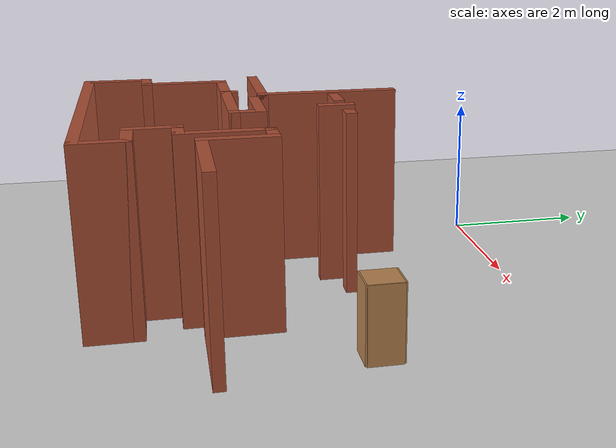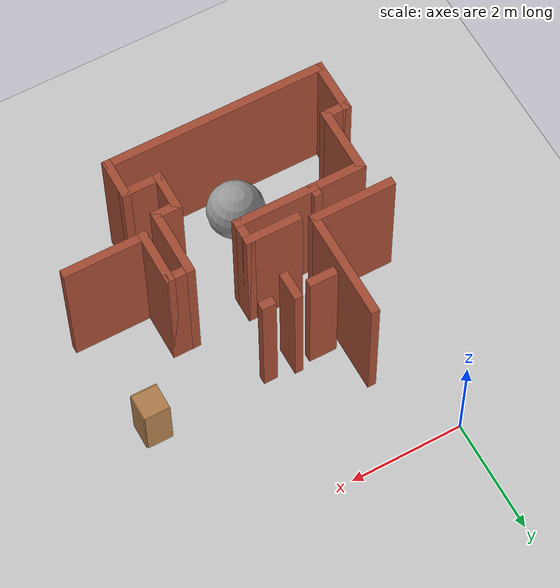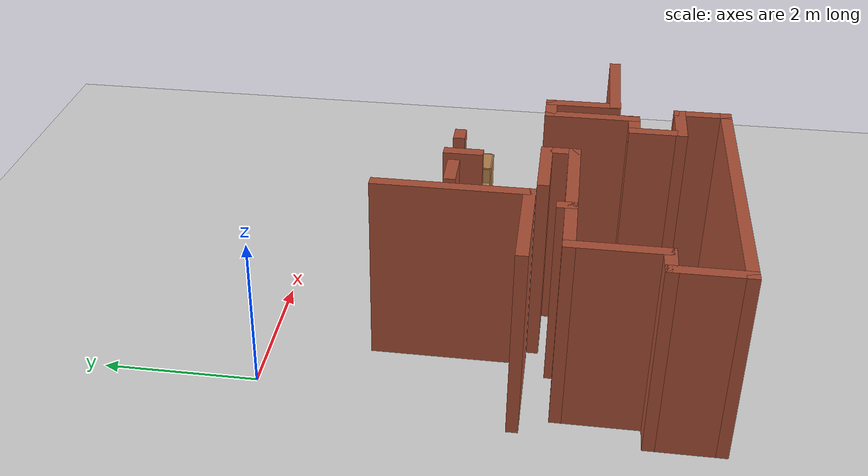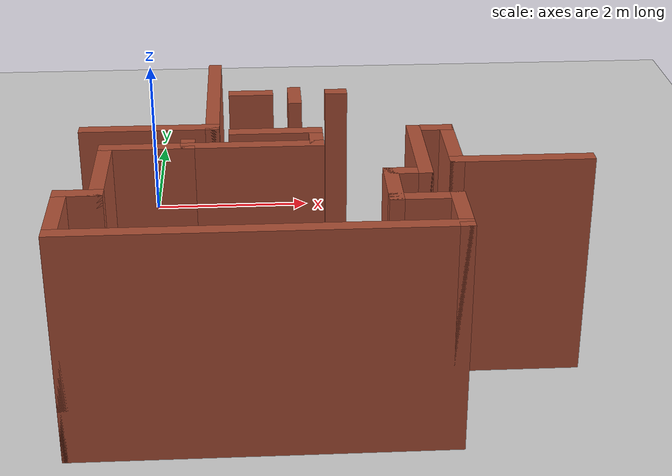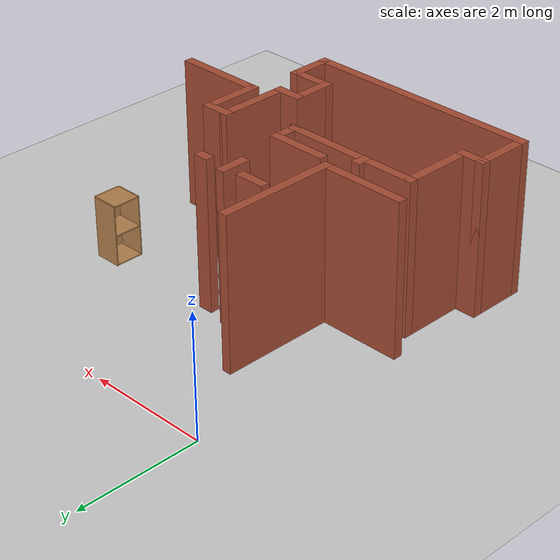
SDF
<sdf version="1.6">
 <world name="default">
  <model name="ground_plane">
   <static>1</static>
   <link name="link">
    <collision name="collision">
     <geometry><plane><normal>0 0 1</normal><size>100 100</size></plane></geometry>
     <surface><friction><ode><mu>100</mu><mu2>50</mu2></ode></friction></surface>
    </collision>
    <visual name="visual">
     <cast_shadows>0</cast_shadows>
     <geometry><plane><normal>0 0 1</normal><size>100 100</size></plane></geometry>
     <material>
      <script><uri>file://media/materials/scripts/gazebo.material</uri><name>Gazebo/Grey</name></script>
     </material>
    </visual>
   </link>
  </model>
  <model name="map_45">
   <link name="Wall_140">
    <pose>1.72787 -2.46306 0 0 -0 0</pose>
    <visual name="Wall_140_Visual">
     <pose>0 0 1.25 0 -0 0</pose>
     <geometry><box><size>0.5 0.15 2.5</size></box></geometry>
     <material>
      <script><uri>file://media/materials/scripts/gazebo.material</uri><name>Gazebo/Bricks</name></script>
      <ambient>1 1 1 1</ambient>
      <shader type="pixel"/>
     </material>
     <meta><layer>0</layer></meta>
    </visual>
    <collision name="Wall_140_Collision">
     <pose>0 0 1.25 0 -0 0</pose>
     <geometry><box><size>0.5 0.15 2.5</size></box></geometry>
     <surface>
      <friction>
       <ode><mu>1</mu><mu2>1</mu2><fdir1>0 0 0</fdir1><slip1>0</slip1><slip2>0</slip2></ode>
       <torsional>
        <coefficient>1</coefficient>
        <patch_radius>0</patch_radius>
        <surface_radius>0</surface_radius>
        <use_patch_radius>1</use_patch_radius>
        <ode><slip>0</slip></ode>
       </torsional>
      </friction>
      <bounce><restitution_coefficient>0</restitution_coefficient><threshold>1e+06</threshold></bounce>
      <contact>
       <collide_without_contact>0</collide_without_contact>
       <collide_without_contact_bitmask>1</collide_without_contact_bitmask>
       <collide_bitmask>1</collide_bitmask>
       <ode>
        <soft_cfm>0</soft_cfm>
        <soft_erp>0.2</soft_erp>
        <kp>1e+13</kp>
        <kd>1</kd>
        <max_vel>0.01</max_vel>
        <min_depth>0</min_depth>
       </ode>
       <bullet>
        <split_impulse>1</split_impulse>
        <split_impulse_penetration_threshold>-0.01</split_impulse_penetration_threshold>
        <soft_cfm>0</soft_cfm>
        <soft_erp>0.2</soft_erp>
        <kp>1e+13</kp>
        <kd>1</kd>
       </bullet>
      </contact>
     </surface>
    </collision>
   </link>
   <link name="Wall_142">
    <pose>2.69348 -2.46306 0 0 -0 0</pose>
    <visual name="Wall_142_Visual">
     <pose>0 0 1.25 0 -0 0</pose>
     <geometry><box><size>0.25 0.15 2.5</size></box></geometry>
     <material>
      <script><uri>file://media/materials/scripts/gazebo.material</uri><name>Gazebo/Bricks</name></script>
      <ambient>1 1 1 1</ambient>
      <shader type="pixel"/>
     </material>
     <meta><layer>0</layer></meta>
    </visual>
    <collision name="Wall_142_Collision">
     <pose>0 0 1.25 0 -0 0</pose>
     <geometry><box><size>0.25 0.15 2.5</size></box></geometry>
     <surface>
      <friction>
       <ode><mu>1</mu><mu2>1</mu2><fdir1>0 0 0</fdir1><slip1>0</slip1><slip2>0</slip2></ode>
       <torsional>
        <coefficient>1</coefficient>
        <patch_radius>0</patch_radius>
        <surface_radius>0</surface_radius>
        <use_patch_radius>1</use_patch_radius>
        <ode><slip>0</slip></ode>
       </torsional>
      </friction>
      <bounce><restitution_coefficient>0</restitution_coefficient><threshold>1e+06</threshold></bounce>
      <contact>
       <collide_without_contact>0</collide_without_contact>
       <collide_without_contact_bitmask>1</collide_without_contact_bitmask>
       <collide_bitmask>1</collide_bitmask>
       <ode>
        <soft_cfm>0</soft_cfm>
        <soft_erp>0.2</soft_erp>
        <kp>1e+13</kp>
        <kd>1</kd>
        <max_vel>0.01</max_vel>
        <min_depth>0</min_depth>
       </ode>
       <bullet>
        <split_impulse>1</split_impulse>
        <split_impulse_penetration_threshold>-0.01</split_impulse_penetration_threshold>
        <soft_cfm>0</soft_cfm>
        <soft_erp>0.2</soft_erp>
        <kp>1e+13</kp>
        <kd>1</kd>
       </bullet>
      </contact>
     </surface>
    </collision>
   </link>
   <link name="Wall_152">
    <pose>2.21787 -2.55826 0 0 0 -1.5708</pose>
    <visual name="Wall_152_Visual">
     <pose>0 0 1.25 0 -0 0</pose>
     <geometry><box><size>0.5 0.15 2.5</size></box></geometry>
     <material>
      <script><uri>file://media/materials/scripts/gazebo.material</uri><name>Gazebo/Bricks</name></script>
      <ambient>1 1 1 1</ambient>
      <shader type="pixel"/>
     </material>
     <meta><layer>0</layer></meta>
    </visual>
    <collision name="Wall_152_Collision">
     <pose>0 0 1.25 0 -0 0</pose>
     <geometry><box><size>0.5 0.15 2.5</size></box></geometry>
     <surface>
      <friction>
       <ode><mu>1</mu><mu2>1</mu2><fdir1>0 0 0</fdir1><slip1>0</slip1><slip2>0</slip2></ode>
       <torsional>
        <coefficient>1</coefficient>
        <patch_radius>0</patch_radius>
        <surface_radius>0</surface_radius>
        <use_patch_radius>1</use_patch_radius>
        <ode><slip>0</slip></ode>
       </torsional>
      </friction>
      <bounce><restitution_coefficient>0</restitution_coefficient><threshold>1e+06</threshold></bounce>
      <contact>
       <collide_without_contact>0</collide_without_contact>
       <collide_without_contact_bitmask>1</collide_without_contact_bitmask>
       <collide_bitmask>1</collide_bitmask>
       <ode>
        <soft_cfm>0</soft_cfm>
        <soft_erp>0.2</soft_erp>
        <kp>1e+13</kp>
        <kd>1</kd>
        <max_vel>0.01</max_vel>
        <min_depth>0</min_depth>
       </ode>
       <bullet>
        <split_impulse>1</split_impulse>
        <split_impulse_penetration_threshold>-0.01</split_impulse_penetration_threshold>
        <soft_cfm>0</soft_cfm>
        <soft_erp>0.2</soft_erp>
        <kp>1e+13</kp>
        <kd>1</kd>
       </bullet>
      </contact>
     </surface>
    </collision>
   </link>
   <link name="Wall_45">
    <pose>0.633834 -3.44269 0 0 -0 0</pose>
    <visual name="Wall_45_Visual">
     <pose>0 0 1.25 0 -0 0</pose>
     <geometry><box><size>1.5 0.15 2.5</size></box></geometry>
     <material>
      <script><uri>file://media/materials/scripts/gazebo.material</uri><name>Gazebo/Bricks</name></script>
      <ambient>1 1 1 1</ambient>
      <shader type="pixel"/>
     </material>
     <meta><layer>0</layer></meta>
    </visual>
    <collision name="Wall_45_Collision">
     <pose>0 0 1.25 0 -0 0</pose>
     <geometry><box><size>1.5 0.15 2.5</size></box></geometry>
     <surface>
      <friction>
       <ode><mu>1</mu><mu2>1</mu2><fdir1>0 0 0</fdir1><slip1>0</slip1><slip2>0</slip2></ode>
       <torsional>
        <coefficient>1</coefficient>
        <patch_radius>0</patch_radius>
        <surface_radius>0</surface_radius>
        <use_patch_radius>1</use_patch_radius>
        <ode><slip>0</slip></ode>
       </torsional>
      </friction>
      <bounce><restitution_coefficient>0</restitution_coefficient><threshold>1e+06</threshold></bounce>
      <contact>
       <collide_without_contact>0</collide_without_contact>
       <collide_without_contact_bitmask>1</collide_without_contact_bitmask>
       <collide_bitmask>1</collide_bitmask>
       <ode>
        <soft_cfm>0</soft_cfm>
        <soft_erp>0.2</soft_erp>
        <kp>1e+13</kp>
        <kd>1</kd>
        <max_vel>0.01</max_vel>
        <min_depth>0</min_depth>
       </ode>
       <bullet>
        <split_impulse>1</split_impulse>
        <split_impulse_penetration_threshold>-0.01</split_impulse_penetration_threshold>
        <soft_cfm>0</soft_cfm>
        <soft_erp>0.2</soft_erp>
        <kp>1e+13</kp>
        <kd>1</kd>
       </bullet>
      </contact>
     </surface>
    </collision>
   </link>
   <link name="Wall_46">
    <pose>1.30883 -2.51769 0 0 -0 1.5708</pose>
    <visual name="Wall_46_Visual">
     <pose>0 0 1.25 0 -0 0</pose>
     <geometry><box><size>2 0.15 2.5</size></box></geometry>
     <material>
      <script><uri>file://media/materials/scripts/gazebo.material</uri><name>Gazebo/Bricks</name></script>
      <ambient>1 1 1 1</ambient>
      <shader type="pixel"/>
     </material>
     <meta><layer>0</layer></meta>
    </visual>
    <collision name="Wall_46_Collision">
     <pose>0 0 1.25 0 -0 0</pose>
     <geometry><box><size>2 0.15 2.5</size></box></geometry>
     <surface>
      <friction>
       <ode><mu>1</mu><mu2>1</mu2><fdir1>0 0 0</fdir1><slip1>0</slip1><slip2>0</slip2></ode>
       <torsional>
        <coefficient>1</coefficient>
        <patch_radius>0</patch_radius>
        <surface_radius>0</surface_radius>
        <use_patch_radius>1</use_patch_radius>
        <ode><slip>0</slip></ode>
       </torsional>
      </friction>
      <bounce><restitution_coefficient>0</restitution_coefficient><threshold>1e+06</threshold></bounce>
      <contact>
       <collide_without_contact>0</collide_without_contact>
       <collide_without_contact_bitmask>1</collide_without_contact_bitmask>
       <collide_bitmask>1</collide_bitmask>
       <ode>
        <soft_cfm>0</soft_cfm>
        <soft_erp>0.2</soft_erp>
        <kp>1e+13</kp>
        <kd>1</kd>
        <max_vel>0.01</max_vel>
        <min_depth>0</min_depth>
       </ode>
       <bullet>
        <split_impulse>1</split_impulse>
        <split_impulse_penetration_threshold>-0.01</split_impulse_penetration_threshold>
        <soft_cfm>0</soft_cfm>
        <soft_erp>0.2</soft_erp>
        <kp>1e+13</kp>
        <kd>1</kd>
       </bullet>
      </contact>
     </surface>
    </collision>
   </link>
   <link name="Wall_51">
    <pose>1.98383 -3.59269 0 0 -0 0</pose>
    <visual name="Wall_51_Visual">
     <pose>0 0 1.25 0 -0 0</pose>
     <geometry><box><size>1 0.15 2.5</size></box></geometry>
     <material>
      <script><uri>file://media/materials/scripts/gazebo.material</uri><name>Gazebo/Bricks</name></script>
      <ambient>1 1 1 1</ambient>
      <shader type="pixel"/>
     </material>
     <meta><layer>0</layer></meta>
    </visual>
    <collision name="Wall_51_Collision">
     <pose>0 0 1.25 0 -0 0</pose>
     <geometry><box><size>1 0.15 2.5</size></box></geometry>
     <surface>
      <friction>
       <ode><mu>1</mu><mu2>1</mu2><fdir1>0 0 0</fdir1><slip1>0</slip1><slip2>0</slip2></ode>
       <torsional>
        <coefficient>1</coefficient>
        <patch_radius>0</patch_radius>
        <surface_radius>0</surface_radius>
        <use_patch_radius>1</use_patch_radius>
        <ode><slip>0</slip></ode>
       </torsional>
      </friction>
      <bounce><restitution_coefficient>0</restitution_coefficient><threshold>1e+06</threshold></bounce>
      <contact>
       <collide_without_contact>0</collide_without_contact>
       <collide_without_contact_bitmask>1</collide_without_contact_bitmask>
       <collide_bitmask>1</collide_bitmask>
       <ode>
        <soft_cfm>0</soft_cfm>
        <soft_erp>0.2</soft_erp>
        <kp>1e+13</kp>
        <kd>1</kd>
        <max_vel>0.01</max_vel>
        <min_depth>0</min_depth>
       </ode>
       <bullet>
        <split_impulse>1</split_impulse>
        <split_impulse_penetration_threshold>-0.01</split_impulse_penetration_threshold>
        <soft_cfm>0</soft_cfm>
        <soft_erp>0.2</soft_erp>
        <kp>1e+13</kp>
        <kd>1</kd>
       </bullet>
      </contact>
     </surface>
    </collision>
   </link>
   <link name="Wall_52">
    <pose>2.40883 -3.76769 0 0 0 -1.5708</pose>
    <visual name="Wall_52_Visual">
     <pose>0 0 1.25 0 -0 0</pose>
     <geometry><box><size>0.5 0.15 2.5</size></box></geometry>
     <material>
      <script><uri>file://media/materials/scripts/gazebo.material</uri><name>Gazebo/Bricks</name></script>
      <ambient>1 1 1 1</ambient>
      <shader type="pixel"/>
     </material>
     <meta><layer>0</layer></meta>
    </visual>
    <collision name="Wall_52_Collision">
     <pose>0 0 1.25 0 -0 0</pose>
     <geometry><box><size>0.5 0.15 2.5</size></box></geometry>
     <surface>
      <friction>
       <ode><mu>1</mu><mu2>1</mu2><fdir1>0 0 0</fdir1><slip1>0</slip1><slip2>0</slip2></ode>
       <torsional>
        <coefficient>1</coefficient>
        <patch_radius>0</patch_radius>
        <surface_radius>0</surface_radius>
        <use_patch_radius>1</use_patch_radius>
        <ode><slip>0</slip></ode>
       </torsional>
      </friction>
      <bounce><restitution_coefficient>0</restitution_coefficient><threshold>1e+06</threshold></bounce>
      <contact>
       <collide_without_contact>0</collide_without_contact>
       <collide_without_contact_bitmask>1</collide_without_contact_bitmask>
       <collide_bitmask>1</collide_bitmask>
       <ode>
        <soft_cfm>0</soft_cfm>
        <soft_erp>0.2</soft_erp>
        <kp>1e+13</kp>
        <kd>1</kd>
        <max_vel>0.01</max_vel>
        <min_depth>0</min_depth>
       </ode>
       <bullet>
        <split_impulse>1</split_impulse>
        <split_impulse_penetration_threshold>-0.01</split_impulse_penetration_threshold>
        <soft_cfm>0</soft_cfm>
        <soft_erp>0.2</soft_erp>
        <kp>1e+13</kp>
        <kd>1</kd>
       </bullet>
      </contact>
     </surface>
    </collision>
   </link>
   <link name="Wall_53">
    <pose>1.73383 -3.94269 0 0 -0 3.14159</pose>
    <visual name="Wall_53_Visual">
     <pose>0 0 1.25 0 -0 0</pose>
     <geometry><box><size>1.5 0.15 2.5</size></box></geometry>
     <material>
      <script><uri>file://media/materials/scripts/gazebo.material</uri><name>Gazebo/Bricks</name></script>
      <ambient>1 1 1 1</ambient>
      <shader type="pixel"/>
     </material>
     <meta><layer>0</layer></meta>
    </visual>
    <collision name="Wall_53_Collision">
     <pose>0 0 1.25 0 -0 0</pose>
     <geometry><box><size>1.5 0.15 2.5</size></box></geometry>
     <surface>
      <friction>
       <ode><mu>1</mu><mu2>1</mu2><fdir1>0 0 0</fdir1><slip1>0</slip1><slip2>0</slip2></ode>
       <torsional>
        <coefficient>1</coefficient>
        <patch_radius>0</patch_radius>
        <surface_radius>0</surface_radius>
        <use_patch_radius>1</use_patch_radius>
        <ode><slip>0</slip></ode>
       </torsional>
      </friction>
      <bounce><restitution_coefficient>0</restitution_coefficient><threshold>1e+06</threshold></bounce>
      <contact>
       <collide_without_contact>0</collide_without_contact>
       <collide_without_contact_bitmask>1</collide_without_contact_bitmask>
       <collide_bitmask>1</collide_bitmask>
       <ode>
        <soft_cfm>0</soft_cfm>
        <soft_erp>0.2</soft_erp>
        <kp>1e+13</kp>
        <kd>1</kd>
        <max_vel>0.01</max_vel>
        <min_depth>0</min_depth>
       </ode>
       <bullet>
        <split_impulse>1</split_impulse>
        <split_impulse_penetration_threshold>-0.01</split_impulse_penetration_threshold>
        <soft_cfm>0</soft_cfm>
        <soft_erp>0.2</soft_erp>
        <kp>1e+13</kp>
        <kd>1</kd>
       </bullet>
      </contact>
     </surface>
    </collision>
   </link>
   <link name="Wall_54">
    <pose>1.05883 -3.89269 0 0 -0 1.5708</pose>
    <visual name="Wall_54_Visual">
     <pose>0 0 1.25 0 -0 0</pose>
     <geometry><box><size>0.25 0.15 2.5</size></box></geometry>
     <material>
      <script><uri>file://media/materials/scripts/gazebo.material</uri><name>Gazebo/Bricks</name></script>
      <ambient>1 1 1 1</ambient>
      <shader type="pixel"/>
     </material>
     <meta><layer>0</layer></meta>
    </visual>
    <collision name="Wall_54_Collision">
     <pose>0 0 1.25 0 -0 0</pose>
     <geometry><box><size>0.25 0.15 2.5</size></box></geometry>
     <surface>
      <friction>
       <ode><mu>1</mu><mu2>1</mu2><fdir1>0 0 0</fdir1><slip1>0</slip1><slip2>0</slip2></ode>
       <torsional>
        <coefficient>1</coefficient>
        <patch_radius>0</patch_radius>
        <surface_radius>0</surface_radius>
        <use_patch_radius>1</use_patch_radius>
        <ode><slip>0</slip></ode>
       </torsional>
      </friction>
      <bounce><restitution_coefficient>0</restitution_coefficient><threshold>1e+06</threshold></bounce>
      <contact>
       <collide_without_contact>0</collide_without_contact>
       <collide_without_contact_bitmask>1</collide_without_contact_bitmask>
       <collide_bitmask>1</collide_bitmask>
       <ode>
        <soft_cfm>0</soft_cfm>
        <soft_erp>0.2</soft_erp>
        <kp>1e+13</kp>
        <kd>1</kd>
        <max_vel>0.01</max_vel>
        <min_depth>0</min_depth>
       </ode>
       <bullet>
        <split_impulse>1</split_impulse>
        <split_impulse_penetration_threshold>-0.01</split_impulse_penetration_threshold>
        <soft_cfm>0</soft_cfm>
        <soft_erp>0.2</soft_erp>
        <kp>1e+13</kp>
        <kd>1</kd>
       </bullet>
      </contact>
     </surface>
    </collision>
   </link>
   <link name="Wall_57">
    <pose>0.633834 -3.94269 0 0 -0 3.14159</pose>
    <visual name="Wall_57_Visual">
     <pose>0 0 1.25 0 -0 0</pose>
     <geometry><box><size>1 0.15 2.5</size></box></geometry>
     <material>
      <script><uri>file://media/materials/scripts/gazebo.material</uri><name>Gazebo/Bricks</name></script>
      <ambient>1 1 1 1</ambient>
      <shader type="pixel"/>
     </material>
     <meta><layer>0</layer></meta>
    </visual>
    <collision name="Wall_57_Collision">
     <pose>0 0 1.25 0 -0 0</pose>
     <geometry><box><size>1 0.15 2.5</size></box></geometry>
     <surface>
      <friction>
       <ode><mu>1</mu><mu2>1</mu2><fdir1>0 0 0</fdir1><slip1>0</slip1><slip2>0</slip2></ode>
       <torsional>
        <coefficient>1</coefficient>
        <patch_radius>0</patch_radius>
        <surface_radius>0</surface_radius>
        <use_patch_radius>1</use_patch_radius>
        <ode><slip>0</slip></ode>
       </torsional>
      </friction>
      <bounce><restitution_coefficient>0</restitution_coefficient><threshold>1e+06</threshold></bounce>
      <contact>
       <collide_without_contact>0</collide_without_contact>
       <collide_without_contact_bitmask>1</collide_without_contact_bitmask>
       <collide_bitmask>1</collide_bitmask>
       <ode>
        <soft_cfm>0</soft_cfm>
        <soft_erp>0.2</soft_erp>
        <kp>1e+13</kp>
        <kd>1</kd>
        <max_vel>0.01</max_vel>
        <min_depth>0</min_depth>
       </ode>
       <bullet>
        <split_impulse>1</split_impulse>
        <split_impulse_penetration_threshold>-0.01</split_impulse_penetration_threshold>
        <soft_cfm>0</soft_cfm>
        <soft_erp>0.2</soft_erp>
        <kp>1e+13</kp>
        <kd>1</kd>
       </bullet>
      </contact>
     </surface>
    </collision>
   </link>
   <link name="Wall_58">
    <pose>0.208834 -4.49269 0 0 0 -1.5708</pose>
    <visual name="Wall_58_Visual">
     <pose>0 0 1.25 0 -0 0</pose>
     <geometry><box><size>1.25 0.15 2.5</size></box></geometry>
     <material>
      <script><uri>file://media/materials/scripts/gazebo.material</uri><name>Gazebo/Bricks</name></script>
      <ambient>1 1 1 1</ambient>
      <shader type="pixel"/>
     </material>
     <meta><layer>0</layer></meta>
    </visual>
    <collision name="Wall_58_Collision">
     <pose>0 0 1.25 0 -0 0</pose>
     <geometry><box><size>1.25 0.15 2.5</size></box></geometry>
     <surface>
      <friction>
       <ode><mu>1</mu><mu2>1</mu2><fdir1>0 0 0</fdir1><slip1>0</slip1><slip2>0</slip2></ode>
       <torsional>
        <coefficient>1</coefficient>
        <patch_radius>0</patch_radius>
        <surface_radius>0</surface_radius>
        <use_patch_radius>1</use_patch_radius>
        <ode><slip>0</slip></ode>
       </torsional>
      </friction>
      <bounce><restitution_coefficient>0</restitution_coefficient><threshold>1e+06</threshold></bounce>
      <contact>
       <collide_without_contact>0</collide_without_contact>
       <collide_without_contact_bitmask>1</collide_without_contact_bitmask>
       <collide_bitmask>1</collide_bitmask>
       <ode>
        <soft_cfm>0</soft_cfm>
        <soft_erp>0.2</soft_erp>
        <kp>1e+13</kp>
        <kd>1</kd>
        <max_vel>0.01</max_vel>
        <min_depth>0</min_depth>
       </ode>
       <bullet>
        <split_impulse>1</split_impulse>
        <split_impulse_penetration_threshold>-0.01</split_impulse_penetration_threshold>
        <soft_cfm>0</soft_cfm>
        <soft_erp>0.2</soft_erp>
        <kp>1e+13</kp>
        <kd>1</kd>
       </bullet>
      </contact>
     </surface>
    </collision>
   </link>
   <link name="Wall_59">
    <pose>0.033834 -5.04269 0 0 -0 3.14159</pose>
    <visual name="Wall_59_Visual">
     <pose>0 0 1.25 0 -0 0</pose>
     <geometry><box><size>0.5 0.15 2.5</size></box></geometry>
     <material>
      <script><uri>file://media/materials/scripts/gazebo.material</uri><name>Gazebo/Bricks</name></script>
      <ambient>1 1 1 1</ambient>
      <shader type="pixel"/>
     </material>
     <meta><layer>0</layer></meta>
    </visual>
    <collision name="Wall_59_Collision">
     <pose>0 0 1.25 0 -0 0</pose>
     <geometry><box><size>0.5 0.15 2.5</size></box></geometry>
     <surface>
      <friction>
       <ode><mu>1</mu><mu2>1</mu2><fdir1>0 0 0</fdir1><slip1>0</slip1><slip2>0</slip2></ode>
       <torsional>
        <coefficient>1</coefficient>
        <patch_radius>0</patch_radius>
        <surface_radius>0</surface_radius>
        <use_patch_radius>1</use_patch_radius>
        <ode><slip>0</slip></ode>
       </torsional>
      </friction>
      <bounce><restitution_coefficient>0</restitution_coefficient><threshold>1e+06</threshold></bounce>
      <contact>
       <collide_without_contact>0</collide_without_contact>
       <collide_without_contact_bitmask>1</collide_without_contact_bitmask>
       <collide_bitmask>1</collide_bitmask>
       <ode>
        <soft_cfm>0</soft_cfm>
        <soft_erp>0.2</soft_erp>
        <kp>1e+13</kp>
        <kd>1</kd>
        <max_vel>0.01</max_vel>
        <min_depth>0</min_depth>
       </ode>
       <bullet>
        <split_impulse>1</split_impulse>
        <split_impulse_penetration_threshold>-0.01</split_impulse_penetration_threshold>
        <soft_cfm>0</soft_cfm>
        <soft_erp>0.2</soft_erp>
        <kp>1e+13</kp>
        <kd>1</kd>
       </bullet>
      </contact>
     </surface>
    </collision>
   </link>
   <link name="Wall_60">
    <pose>-0.141166 -5.46769 0 0 0 -1.5708</pose>
    <visual name="Wall_60_Visual">
     <pose>0 0 1.25 0 -0 0</pose>
     <geometry><box><size>1 0.15 2.5</size></box></geometry>
     <material>
      <script><uri>file://media/materials/scripts/gazebo.material</uri><name>Gazebo/Bricks</name></script>
      <ambient>1 1 1 1</ambient>
      <shader type="pixel"/>
     </material>
     <meta><layer>0</layer></meta>
    </visual>
    <collision name="Wall_60_Collision">
     <pose>0 0 1.25 0 -0 0</pose>
     <geometry><box><size>1 0.15 2.5</size></box></geometry>
     <surface>
      <friction>
       <ode><mu>1</mu><mu2>1</mu2><fdir1>0 0 0</fdir1><slip1>0</slip1><slip2>0</slip2></ode>
       <torsional>
        <coefficient>1</coefficient>
        <patch_radius>0</patch_radius>
        <surface_radius>0</surface_radius>
        <use_patch_radius>1</use_patch_radius>
        <ode><slip>0</slip></ode>
       </torsional>
      </friction>
      <bounce><restitution_coefficient>0</restitution_coefficient><threshold>1e+06</threshold></bounce>
      <contact>
       <collide_without_contact>0</collide_without_contact>
       <collide_without_contact_bitmask>1</collide_without_contact_bitmask>
       <collide_bitmask>1</collide_bitmask>
       <ode>
        <soft_cfm>0</soft_cfm>
        <soft_erp>0.2</soft_erp>
        <kp>1e+13</kp>
        <kd>1</kd>
        <max_vel>0.01</max_vel>
        <min_depth>0</min_depth>
       </ode>
       <bullet>
        <split_impulse>1</split_impulse>
        <split_impulse_penetration_threshold>-0.01</split_impulse_penetration_threshold>
        <soft_cfm>0</soft_cfm>
        <soft_erp>0.2</soft_erp>
        <kp>1e+13</kp>
        <kd>1</kd>
       </bullet>
      </contact>
     </surface>
    </collision>
   </link>
   <link name="Wall_61">
    <pose>1.78383 -5.89269 0 0 -0 0</pose>
    <visual name="Wall_61_Visual">
     <pose>0 0 1.25 0 -0 0</pose>
     <geometry><box><size>4 0.15 2.5</size></box></geometry>
     <material>
      <script><uri>file://media/materials/scripts/gazebo.material</uri><name>Gazebo/Bricks</name></script>
      <ambient>1 1 1 1</ambient>
      <shader type="pixel"/>
     </material>
     <meta><layer>0</layer></meta>
    </visual>
    <collision name="Wall_61_Collision">
     <pose>0 0 1.25 0 -0 0</pose>
     <geometry><box><size>4 0.15 2.5</size></box></geometry>
     <surface>
      <friction>
       <ode><mu>1</mu><mu2>1</mu2><fdir1>0 0 0</fdir1><slip1>0</slip1><slip2>0</slip2></ode>
       <torsional>
        <coefficient>1</coefficient>
        <patch_radius>0</patch_radius>
        <surface_radius>0</surface_radius>
        <use_patch_radius>1</use_patch_radius>
        <ode><slip>0</slip></ode>
       </torsional>
      </friction>
      <bounce><restitution_coefficient>0</restitution_coefficient><threshold>1e+06</threshold></bounce>
      <contact>
       <collide_without_contact>0</collide_without_contact>
       <collide_without_contact_bitmask>1</collide_without_contact_bitmask>
       <collide_bitmask>1</collide_bitmask>
       <ode>
        <soft_cfm>0</soft_cfm>
        <soft_erp>0.2</soft_erp>
        <kp>1e+13</kp>
        <kd>1</kd>
        <max_vel>0.01</max_vel>
        <min_depth>0</min_depth>
       </ode>
       <bullet>
        <split_impulse>1</split_impulse>
        <split_impulse_penetration_threshold>-0.01</split_impulse_penetration_threshold>
        <soft_cfm>0</soft_cfm>
        <soft_erp>0.2</soft_erp>
        <kp>1e+13</kp>
        <kd>1</kd>
       </bullet>
      </contact>
     </surface>
    </collision>
   </link>
   <link name="Wall_62">
    <pose>3.70883 -5.59269 0 0 -0 1.5708</pose>
    <visual name="Wall_62_Visual">
     <pose>0 0 1.25 0 -0 0</pose>
     <geometry><box><size>0.75 0.15 2.5</size></box></geometry>
     <material>
      <script><uri>file://media/materials/scripts/gazebo.material</uri><name>Gazebo/Bricks</name></script>
      <ambient>1 1 1 1</ambient>
      <shader type="pixel"/>
     </material>
     <meta><layer>0</layer></meta>
    </visual>
    <collision name="Wall_62_Collision">
     <pose>0 0 1.25 0 -0 0</pose>
     <geometry><box><size>0.75 0.15 2.5</size></box></geometry>
     <surface>
      <friction>
       <ode><mu>1</mu><mu2>1</mu2><fdir1>0 0 0</fdir1><slip1>0</slip1><slip2>0</slip2></ode>
       <torsional>
        <coefficient>1</coefficient>
        <patch_radius>0</patch_radius>
        <surface_radius>0</surface_radius>
        <use_patch_radius>1</use_patch_radius>
        <ode><slip>0</slip></ode>
       </torsional>
      </friction>
      <bounce><restitution_coefficient>0</restitution_coefficient><threshold>1e+06</threshold></bounce>
      <contact>
       <collide_without_contact>0</collide_without_contact>
       <collide_without_contact_bitmask>1</collide_without_contact_bitmask>
       <collide_bitmask>1</collide_bitmask>
       <ode>
        <soft_cfm>0</soft_cfm>
        <soft_erp>0.2</soft_erp>
        <kp>1e+13</kp>
        <kd>1</kd>
        <max_vel>0.01</max_vel>
        <min_depth>0</min_depth>
       </ode>
       <bullet>
        <split_impulse>1</split_impulse>
        <split_impulse_penetration_threshold>-0.01</split_impulse_penetration_threshold>
        <soft_cfm>0</soft_cfm>
        <soft_erp>0.2</soft_erp>
        <kp>1e+13</kp>
        <kd>1</kd>
       </bullet>
      </contact>
     </surface>
    </collision>
   </link>
   <link name="Wall_63">
    <pose>3.40883 -5.29269 0 0 -0 3.14159</pose>
    <visual name="Wall_63_Visual">
     <pose>0 0 1.25 0 -0 0</pose>
     <geometry><box><size>0.75 0.15 2.5</size></box></geometry>
     <material>
      <script><uri>file://media/materials/scripts/gazebo.material</uri><name>Gazebo/Bricks</name></script>
      <ambient>1 1 1 1</ambient>
      <shader type="pixel"/>
     </material>
     <meta><layer>0</layer></meta>
    </visual>
    <collision name="Wall_63_Collision">
     <pose>0 0 1.25 0 -0 0</pose>
     <geometry><box><size>0.75 0.15 2.5</size></box></geometry>
     <surface>
      <friction>
       <ode><mu>1</mu><mu2>1</mu2><fdir1>0 0 0</fdir1><slip1>0</slip1><slip2>0</slip2></ode>
       <torsional>
        <coefficient>1</coefficient>
        <patch_radius>0</patch_radius>
        <surface_radius>0</surface_radius>
        <use_patch_radius>1</use_patch_radius>
        <ode><slip>0</slip></ode>
       </torsional>
      </friction>
      <bounce><restitution_coefficient>0</restitution_coefficient><threshold>1e+06</threshold></bounce>
      <contact>
       <collide_without_contact>0</collide_without_contact>
       <collide_without_contact_bitmask>1</collide_without_contact_bitmask>
       <collide_bitmask>1</collide_bitmask>
       <ode>
        <soft_cfm>0</soft_cfm>
        <soft_erp>0.2</soft_erp>
        <kp>1e+13</kp>
        <kd>1</kd>
        <max_vel>0.01</max_vel>
        <min_depth>0</min_depth>
       </ode>
       <bullet>
        <split_impulse>1</split_impulse>
        <split_impulse_penetration_threshold>-0.01</split_impulse_penetration_threshold>
        <soft_cfm>0</soft_cfm>
        <soft_erp>0.2</soft_erp>
        <kp>1e+13</kp>
        <kd>1</kd>
       </bullet>
      </contact>
     </surface>
    </collision>
   </link>
   <link name="Wall_64">
    <pose>3.10883 -4.99269 0 0 -0 1.5708</pose>
    <visual name="Wall_64_Visual">
     <pose>0 0 1.25 0 -0 0</pose>
     <geometry><box><size>0.75 0.15 2.5</size></box></geometry>
     <material>
      <script><uri>file://media/materials/scripts/gazebo.material</uri><name>Gazebo/Bricks</name></script>
      <ambient>1 1 1 1</ambient>
      <shader type="pixel"/>
     </material>
     <meta><layer>0</layer></meta>
    </visual>
    <collision name="Wall_64_Collision">
     <pose>0 0 1.25 0 -0 0</pose>
     <geometry><box><size>0.75 0.15 2.5</size></box></geometry>
     <surface>
      <friction>
       <ode><mu>1</mu><mu2>1</mu2><fdir1>0 0 0</fdir1><slip1>0</slip1><slip2>0</slip2></ode>
       <torsional>
        <coefficient>1</coefficient>
        <patch_radius>0</patch_radius>
        <surface_radius>0</surface_radius>
        <use_patch_radius>1</use_patch_radius>
        <ode><slip>0</slip></ode>
       </torsional>
      </friction>
      <bounce><restitution_coefficient>0</restitution_coefficient><threshold>1e+06</threshold></bounce>
      <contact>
       <collide_without_contact>0</collide_without_contact>
       <collide_without_contact_bitmask>1</collide_without_contact_bitmask>
       <collide_bitmask>1</collide_bitmask>
       <ode>
        <soft_cfm>0</soft_cfm>
        <soft_erp>0.2</soft_erp>
        <kp>1e+13</kp>
        <kd>1</kd>
        <max_vel>0.01</max_vel>
        <min_depth>0</min_depth>
       </ode>
       <bullet>
        <split_impulse>1</split_impulse>
        <split_impulse_penetration_threshold>-0.01</split_impulse_penetration_threshold>
        <soft_cfm>0</soft_cfm>
        <soft_erp>0.2</soft_erp>
        <kp>1e+13</kp>
        <kd>1</kd>
       </bullet>
      </contact>
     </surface>
    </collision>
   </link>
   <link name="Wall_65">
    <pose>3.28383 -4.69269 0 0 -0 0</pose>
    <visual name="Wall_65_Visual">
     <pose>0 0 1.25 0 -0 0</pose>
     <geometry><box><size>0.5 0.15 2.5</size></box></geometry>
     <material>
      <script><uri>file://media/materials/scripts/gazebo.material</uri><name>Gazebo/Bricks</name></script>
      <ambient>1 1 1 1</ambient>
      <shader type="pixel"/>
     </material>
     <meta><layer>0</layer></meta>
    </visual>
    <collision name="Wall_65_Collision">
     <pose>0 0 1.25 0 -0 0</pose>
     <geometry><box><size>0.5 0.15 2.5</size></box></geometry>
     <surface>
      <friction>
       <ode><mu>1</mu><mu2>1</mu2><fdir1>0 0 0</fdir1><slip1>0</slip1><slip2>0</slip2></ode>
       <torsional>
        <coefficient>1</coefficient>
        <patch_radius>0</patch_radius>
        <surface_radius>0</surface_radius>
        <use_patch_radius>1</use_patch_radius>
        <ode><slip>0</slip></ode>
       </torsional>
      </friction>
      <bounce><restitution_coefficient>0</restitution_coefficient><threshold>1e+06</threshold></bounce>
      <contact>
       <collide_without_contact>0</collide_without_contact>
       <collide_without_contact_bitmask>1</collide_without_contact_bitmask>
       <collide_bitmask>1</collide_bitmask>
       <ode>
        <soft_cfm>0</soft_cfm>
        <soft_erp>0.2</soft_erp>
        <kp>1e+13</kp>
        <kd>1</kd>
        <max_vel>0.01</max_vel>
        <min_depth>0</min_depth>
       </ode>
       <bullet>
        <split_impulse>1</split_impulse>
        <split_impulse_penetration_threshold>-0.01</split_impulse_penetration_threshold>
        <soft_cfm>0</soft_cfm>
        <soft_erp>0.2</soft_erp>
        <kp>1e+13</kp>
        <kd>1</kd>
       </bullet>
      </contact>
     </surface>
    </collision>
   </link>
   <link name="Wall_66">
    <pose>3.45883 -4.14269 0 0 -0 1.5708</pose>
    <visual name="Wall_66_Visual">
     <pose>0 0 1.25 0 -0 0</pose>
     <geometry><box><size>1.25 0.15 2.5</size></box></geometry>
     <material>
      <script><uri>file://media/materials/scripts/gazebo.material</uri><name>Gazebo/Bricks</name></script>
      <ambient>1 1 1 1</ambient>
      <shader type="pixel"/>
     </material>
     <meta><layer>0</layer></meta>
    </visual>
    <collision name="Wall_66_Collision">
     <pose>0 0 1.25 0 -0 0</pose>
     <geometry><box><size>1.25 0.15 2.5</size></box></geometry>
     <surface>
      <friction>
       <ode><mu>1</mu><mu2>1</mu2><fdir1>0 0 0</fdir1><slip1>0</slip1><slip2>0</slip2></ode>
       <torsional>
        <coefficient>1</coefficient>
        <patch_radius>0</patch_radius>
        <surface_radius>0</surface_radius>
        <use_patch_radius>1</use_patch_radius>
        <ode><slip>0</slip></ode>
       </torsional>
      </friction>
      <bounce><restitution_coefficient>0</restitution_coefficient><threshold>1e+06</threshold></bounce>
      <contact>
       <collide_without_contact>0</collide_without_contact>
       <collide_without_contact_bitmask>1</collide_without_contact_bitmask>
       <collide_bitmask>1</collide_bitmask>
       <ode>
        <soft_cfm>0</soft_cfm>
        <soft_erp>0.2</soft_erp>
        <kp>1e+13</kp>
        <kd>1</kd>
        <max_vel>0.01</max_vel>
        <min_depth>0</min_depth>
       </ode>
       <bullet>
        <split_impulse>1</split_impulse>
        <split_impulse_penetration_threshold>-0.01</split_impulse_penetration_threshold>
        <soft_cfm>0</soft_cfm>
        <soft_erp>0.2</soft_erp>
        <kp>1e+13</kp>
        <kd>1</kd>
       </bullet>
      </contact>
     </surface>
    </collision>
   </link>
   <link name="Wall_67">
    <pose>3.63383 -3.59269 0 0 -0 0</pose>
    <visual name="Wall_67_Visual">
     <pose>0 0 1.25 0 -0 0</pose>
     <geometry><box><size>0.5 0.15 2.5</size></box></geometry>
     <material>
      <script><uri>file://media/materials/scripts/gazebo.material</uri><name>Gazebo/Bricks</name></script>
      <ambient>1 1 1 1</ambient>
      <shader type="pixel"/>
     </material>
     <meta><layer>0</layer></meta>
    </visual>
    <collision name="Wall_67_Collision">
     <pose>0 0 1.25 0 -0 0</pose>
     <geometry><box><size>0.5 0.15 2.5</size></box></geometry>
     <surface>
      <friction>
       <ode><mu>1</mu><mu2>1</mu2><fdir1>0 0 0</fdir1><slip1>0</slip1><slip2>0</slip2></ode>
       <torsional>
        <coefficient>1</coefficient>
        <patch_radius>0</patch_radius>
        <surface_radius>0</surface_radius>
        <use_patch_radius>1</use_patch_radius>
        <ode><slip>0</slip></ode>
       </torsional>
      </friction>
      <bounce><restitution_coefficient>0</restitution_coefficient><threshold>1e+06</threshold></bounce>
      <contact>
       <collide_without_contact>0</collide_without_contact>
       <collide_without_contact_bitmask>1</collide_without_contact_bitmask>
       <collide_bitmask>1</collide_bitmask>
       <ode>
        <soft_cfm>0</soft_cfm>
        <soft_erp>0.2</soft_erp>
        <kp>1e+13</kp>
        <kd>1</kd>
        <max_vel>0.01</max_vel>
        <min_depth>0</min_depth>
       </ode>
       <bullet>
        <split_impulse>1</split_impulse>
        <split_impulse_penetration_threshold>-0.01</split_impulse_penetration_threshold>
        <soft_cfm>0</soft_cfm>
        <soft_erp>0.2</soft_erp>
        <kp>1e+13</kp>
        <kd>1</kd>
       </bullet>
      </contact>
     </surface>
    </collision>
   </link>
   <link name="Wall_68">
    <pose>3.80883 -4.01769 0 0 0 -1.5708</pose>
    <visual name="Wall_68_Visual">
     <pose>0 0 1.25 0 -0 0</pose>
     <geometry><box><size>1 0.15 2.5</size></box></geometry>
     <material>
      <script><uri>file://media/materials/scripts/gazebo.material</uri><name>Gazebo/Bricks</name></script>
      <ambient>1 1 1 1</ambient>
      <shader type="pixel"/>
     </material>
     <meta><layer>0</layer></meta>
    </visual>
    <collision name="Wall_68_Collision">
     <pose>0 0 1.25 0 -0 0</pose>
     <geometry><box><size>1 0.15 2.5</size></box></geometry>
     <surface>
      <friction>
       <ode><mu>1</mu><mu2>1</mu2><fdir1>0 0 0</fdir1><slip1>0</slip1><slip2>0</slip2></ode>
       <torsional>
        <coefficient>1</coefficient>
        <patch_radius>0</patch_radius>
        <surface_radius>0</surface_radius>
        <use_patch_radius>1</use_patch_radius>
        <ode><slip>0</slip></ode>
       </torsional>
      </friction>
      <bounce><restitution_coefficient>0</restitution_coefficient><threshold>1e+06</threshold></bounce>
      <contact>
       <collide_without_contact>0</collide_without_contact>
       <collide_without_contact_bitmask>1</collide_without_contact_bitmask>
       <collide_bitmask>1</collide_bitmask>
       <ode>
        <soft_cfm>0</soft_cfm>
        <soft_erp>0.2</soft_erp>
        <kp>1e+13</kp>
        <kd>1</kd>
        <max_vel>0.01</max_vel>
        <min_depth>0</min_depth>
       </ode>
       <bullet>
        <split_impulse>1</split_impulse>
        <split_impulse_penetration_threshold>-0.01</split_impulse_penetration_threshold>
        <soft_cfm>0</soft_cfm>
        <soft_erp>0.2</soft_erp>
        <kp>1e+13</kp>
        <kd>1</kd>
       </bullet>
      </contact>
     </surface>
    </collision>
   </link>
   <link name="Wall_69">
    <pose>4.48383 -4.44269 0 0 -0 0</pose>
    <visual name="Wall_69_Visual">
     <pose>0 0 1.25 0 -0 0</pose>
     <geometry><box><size>1.5 0.15 2.5</size></box></geometry>
     <material>
      <script><uri>file://media/materials/scripts/gazebo.material</uri><name>Gazebo/Bricks</name></script>
      <ambient>1 1 1 1</ambient>
      <shader type="pixel"/>
     </material>
     <meta><layer>0</layer></meta>
    </visual>
    <collision name="Wall_69_Collision">
     <pose>0 0 1.25 0 -0 0</pose>
     <geometry><box><size>1.5 0.15 2.5</size></box></geometry>
     <surface>
      <friction>
       <ode><mu>1</mu><mu2>1</mu2><fdir1>0 0 0</fdir1><slip1>0</slip1><slip2>0</slip2></ode>
       <torsional>
        <coefficient>1</coefficient>
        <patch_radius>0</patch_radius>
        <surface_radius>0</surface_radius>
        <use_patch_radius>1</use_patch_radius>
        <ode><slip>0</slip></ode>
       </torsional>
      </friction>
      <bounce><restitution_coefficient>0</restitution_coefficient><threshold>1e+06</threshold></bounce>
      <contact>
       <collide_without_contact>0</collide_without_contact>
       <collide_without_contact_bitmask>1</collide_without_contact_bitmask>
       <collide_bitmask>1</collide_bitmask>
       <ode>
        <soft_cfm>0</soft_cfm>
        <soft_erp>0.2</soft_erp>
        <kp>1e+13</kp>
        <kd>1</kd>
        <max_vel>0.01</max_vel>
        <min_depth>0</min_depth>
       </ode>
       <bullet>
        <split_impulse>1</split_impulse>
        <split_impulse_penetration_threshold>-0.01</split_impulse_penetration_threshold>
        <soft_cfm>0</soft_cfm>
        <soft_erp>0.2</soft_erp>
        <kp>1e+13</kp>
        <kd>1</kd>
       </bullet>
      </contact>
     </surface>
    </collision>
   </link>
   <static>1</static>
   <pose>-0.4298 0.19019 0 0 -0 0</pose>
  </model>
  <model name="cabinet_3">
   <static>1</static>
   <link name="cabinet_bottom_plate">
    <inertial>
     <pose>0 0 -1 0 -0 0</pose>
     <inertia><ixx>2.05</ixx><ixy>0</ixy><ixz>0</ixz><iyy>2.05</iyy><iyz>0</iyz><izz>2.05</izz></inertia>
     <mass>25</mass>
    </inertial>
    <collision name="cabinet_bottom_plate_geom">
     <pose>0 0 0.01 0 -0 0</pose>
     <geometry><box><size>0.45 0.45 0.02</size></box></geometry>
    </collision>
    <visual name="cabinet_bottom_plate_geom_visual">
     <pose>0 0 0.01 0 -0 0</pose>
     <geometry><box><size>0.45 0.45 0.02</size></box></geometry>
     <material>
      <script><uri>file://media/materials/scripts/gazebo.material</uri><name>Gazebo/Wood</name></script>
     </material>
    </visual>
    <collision name="cabinet_bottom_plate_geom_cabinet_back_plate">
     <pose>0.235 0 0.51 0 -0 0</pose>
     <geometry><box><size>0.02 0.45 1.02</size></box></geometry>
    </collision>
    <visual name="cabinet_bottom_plate_geom_cabinet_back_plate_visual">
     <pose>0.235 0 0.51 0 -0 0</pose>
     <geometry><box><size>0.02 0.45 1.02</size></box></geometry>
     <material>
      <script><uri>file://media/materials/scripts/gazebo.material</uri><name>Gazebo/Wood</name></script>
     </material>
    </visual>
    <collision name="cabinet_bottom_plate_geom_cabinet_left_plate">
     <pose>0 0.235 0.51 0 -0 0</pose>
     <geometry><box><size>0.45 0.02 1.02</size></box></geometry>
    </collision>
    <visual name="cabinet_bottom_plate_geom_cabinet_left_plate_visual">
     <pose>0 0.235 0.51 0 -0 0</pose>
     <geometry><box><size>0.45 0.02 1.02</size></box></geometry>
     <material>
      <script><uri>file://media/materials/scripts/gazebo.material</uri><name>Gazebo/Wood</name></script>
     </material>
    </visual>
    <collision name="cabinet_bottom_plate_geom_cabinet_middle_plate">
     <pose>0 0 0.51 0 -0 0</pose>
     <geometry><box><size>0.45 0.45 0.02</size></box></geometry>
    </collision>
    <visual name="cabinet_bottom_plate_geom_cabinet_middle_plate_visual">
     <pose>0 0 0.51 0 -0 0</pose>
     <geometry><box><size>0.45 0.45 0.02</size></box></geometry>
     <material>
      <script><uri>file://media/materials/scripts/gazebo.material</uri><name>Gazebo/Wood</name></script>
     </material>
    </visual>
    <collision name="cabinet_bottom_plate_geom_cabinet_right_plate">
     <pose>0 -0.235 0.51 0 -0 0</pose>
     <geometry><box><size>0.45 0.02 1.02</size></box></geometry>
    </collision>
    <visual name="cabinet_bottom_plate_geom_cabinet_right_plate_visual">
     <pose>0 -0.235 0.51 0 -0 0</pose>
     <geometry><box><size>0.45 0.02 1.02</size></box></geometry>
     <material>
      <script><uri>file://media/materials/scripts/gazebo.material</uri><name>Gazebo/Wood</name></script>
     </material>
    </visual>
    <collision name="cabinet_bottom_plate_geom_cabinet_top_plate">
     <pose>0 0 1.01 0 -0 0</pose>
     <geometry><box><size>0.45 0.45 0.02</size></box></geometry>
    </collision>
    <visual name="cabinet_bottom_plate_geom_cabinet_top_plate_visual">
     <pose>0 0 1.01 0 -0 0</pose>
     <geometry><box><size>0.45 0.45 0.02</size></box></geometry>
     <material>
      <script><uri>file://media/materials/scripts/gazebo.material</uri><name>Gazebo/Wood</name></script>
     </material>
    </visual>
   </link>
   <pose>4.33821 -2.32611 0 0 -0 0</pose>
  </model>
  <model name="unit_sphere">
   <pose>1.36668 -5.0576 0.5 0 -0 0</pose>
   <link name="link">
    <inertial>
     <mass>1</mass>
     <inertia><ixx>0.1</ixx><ixy>0</ixy><ixz>0</ixz><iyy>0.1</iyy><iyz>0</iyz><izz>0.1</izz></inertia>
    </inertial>
    <collision name="collision"><geometry><sphere><radius>0.5</radius></sphere></geometry></collision>
    <visual name="visual">
     <geometry><sphere><radius>0.5</radius></sphere></geometry>
     <material>
      <script><name>Gazebo/Grey</name><uri>file://media/materials/scripts/gazebo.material</uri></script>
     </material>
    </visual>
   </link>
  </model>
 </world>
</sdf>
